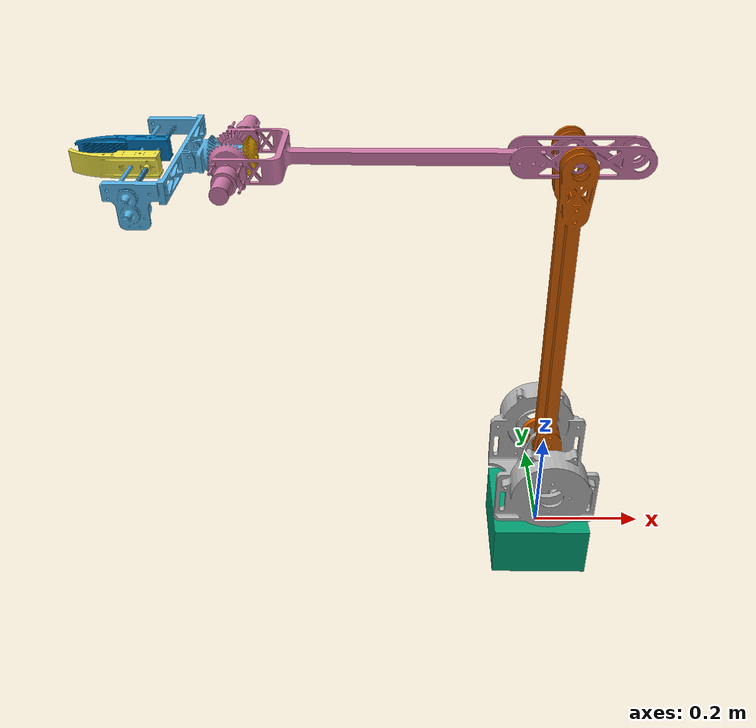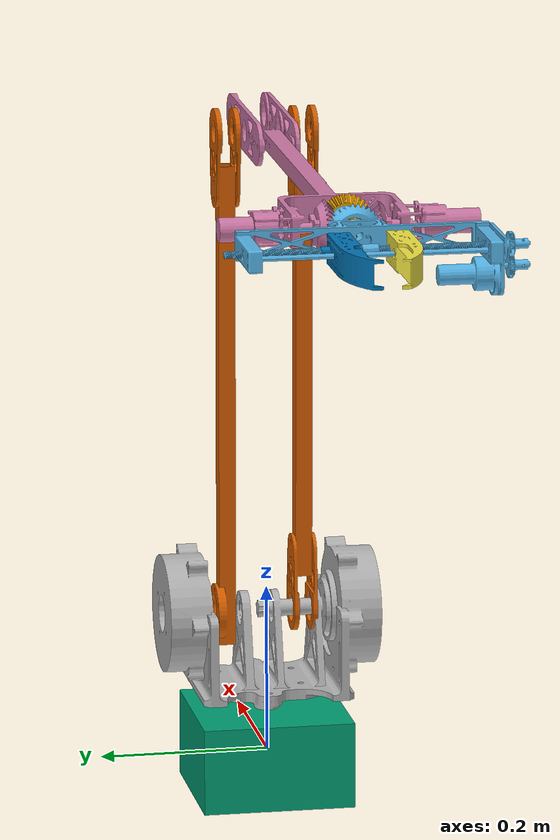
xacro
<?xml version="1.0"?>
<robot xmlns:xacro="http://www.ros.org/wiki/xacro" name="rm">
    <xacro:arg name="initial_positions_file" default="initial_positions.yaml" />

    <!-- Import rm urdf file -->
    <xacro:include filename="$(find actual_rm_description)/urdf/rm.urdf" />

    <!-- Import control_xacro -->
    <xacro:include filename="rm.ros2_control.xacro" />

    <xacro:rm_ros2_control name="FakeSystem" initial_positions_file="$(arg initial_positions_file)"/>

</robot>

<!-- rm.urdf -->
<robot name="rm" version="1.0">
  <joint name="bevel_pitch" type="revolute">
    <limit lower="-1.57000" upper="1.57000" effort="10.0" velocity="2.0"/>
    <origin rpy="0 0.00000 0" xyz="0.00000 0.00000 0.00000"/>
    <parent link="bevel_link"/>
    <child link="bevel_link_link"/>
    <axis xyz="1.00000 0.00000 0.00000"/>
  </joint>
  <joint name="bevel_roll" type="revolute">
    <limit lower="-1.57000" upper="1.57000" effort="10.0" velocity="2.0"/>
    <origin rpy="0.00000 0.00000 0.00000" xyz="-0.51941 -0.00182 -0.00020"/>
    <parent link="link2_link"/>
    <child link="bevel_link"/>
    <axis xyz="0.00000 1.00000 0.00000"/>
  </joint>
  <joint name="gripper_l" type="prismatic">
    <limit lower="0.00000" upper="0.08000" effort="10.0" velocity="2.0"/>
    <origin rpy="0.00000 0.00000 0.0" xyz="-0.11603 -0.01154 0.00026"/>
    <parent link="bevel_link_link"/>
    <child link="gripperl_link"/>
    <axis xyz="0.00000 -1.00000 0.00000"/>
  </joint>
  <joint name="gripper_r" type="prismatic">
    <limit lower="0.00000" upper="0.08000" effort="10.0" velocity="2.0"/>
    <origin rpy="0.00000 0.00000 0.0" xyz="-0.11612 0.00953 0.00026"/>
    <parent link="bevel_link_link"/>
    <child link="gripperr_link"/>
    <axis xyz="0.00000 1.00000 0.00000"/>
  </joint>
  <joint name="link1" type="revolute">
    <limit lower="-1.10000" upper="0.60000" effort="10.0" velocity="2.0"/>
    <origin rpy="0.00000 0.00000 0.00000" xyz="-0.00009 0.00000 0.11805"/>
    <parent link="swivel_link"/>
    <child link="link1_link"/>
    <axis xyz="0.00000 1.00000 0.00000"/>
  </joint>
  <joint name="link2" type="revolute">
    <limit lower="-1.10000" upper="0.80000" effort="10.0" velocity="2.0"/>
    <origin rpy="0.00000 0.00000 0.00000" xyz="-0.00188 0.00211 0.57968"/>
    <parent link="link1_link"/>
    <child link="link2_link"/>
    <axis xyz="0.00000 1.00000 0.00000"/>
  </joint>
  <joint name="swivel" type="revolute">
    <limit lower="-1.57000" upper="1.57000" effort="10.0" velocity="2.0"/>
    <origin rpy="0.00000 0.00000 0.00000" xyz="0.00009 -0.00000 0.05537"/>
    <parent link="body_link"/>
    <child link="swivel_link"/>
    <axis xyz="0.00000 0.00000 1.00000"/>
  </joint>
  <link name="bevel_link">
    <collision name="bevel_collision_roll">
      <origin rpy="0.0 -0.00000 0.0" xyz="0.00000 -0.00000 0.00000"/>
      <geometry>
        <mesh filename="package://actual_rm_description/meshes/stl/bevel_collision_roll.stl" scale="1.00000 1.00000 1.00000"/>
      </geometry>
    </collision>
    <visual name="bevel_roll">
      <origin rpy="0.0 -0.00000 0.0" xyz="0.00000 -0.00000 -0.00000"/>
      <geometry>
        <mesh filename="package://actual_rm_description/meshes/stl/bevel_roll.stl" scale="1.00000 1.00000 1.00000"/>
      </geometry>
    </visual>
  </link>
  <link name="bevel_link_link">
    <collision name="bevel_collision_pitch">
      <origin rpy="0.00000 0.00000 0.0" xyz="-0.00000 0.00000 0.00000"/>
      <geometry>
        <mesh filename="package://actual_rm_description/meshes/stl/bevel_collision_pitch.stl" scale="1.00000 1.00000 1.00000"/>
      </geometry>
    </collision>
    <visual name="bevel_pitch">
      <origin rpy="0.00000 0.00000 0.0" xyz="-0.00000 0.00000 0.00000"/>
      <geometry>
        <mesh filename="package://actual_rm_description/meshes/stl/bevel_pitch.stl" scale="1.00000 1.00000 1.00000"/>
      </geometry>
    </visual>
  </link>
  <link name="body_link">
    <collision name="body_collision">
      <origin rpy="0.00000 0.00000 0.00000" xyz="0.00000 0.00000 0.00000"/>
      <geometry>
        <mesh filename="package://actual_rm_description/meshes/stl/body_collision.stl" scale="1.00000 1.00000 1.00000"/>
      </geometry>
    </collision>
    <visual name="body">
      <origin rpy="0.00000 0.00000 0.00000" xyz="0.00000 0.00000 0.00000"/>
      <geometry>
        <mesh filename="package://actual_rm_description/meshes/stl/body.stl" scale="1.00000 1.00000 1.00000"/>
      </geometry>
    </visual>
  </link>
  <link name="gripperl_link">
    <collision name="gripperl_collision">
      <origin rpy="0.00000 0.00000 0.00000" xyz="0.00000 -0.00906 0.00000"/>
      <geometry>
        <mesh filename="package://actual_rm_description/meshes/stl/gripperl_collision.stl" scale="1.00000 1.00000 1.00000"/>
      </geometry>
    </collision>
    <visual name="gripperl">
      <origin rpy="0.00000 0.00000 0.00000" xyz="0.00000 -0.00906 0.00000"/>
      <geometry>
        <mesh filename="package://actual_rm_description/meshes/stl/gripperl.stl" scale="1.00000 1.00000 1.00000"/>
      </geometry>
    </visual>
  </link>
  <link name="gripperr_link">
    <collision name="gripperr_collision">
      <origin rpy="0.00000 0.00000 0.00000" xyz="0.00000 0.01059 -0.00000"/>
      <geometry>
        <mesh filename="package://actual_rm_description/meshes/stl/gripperr_collision.stl" scale="1.00000 1.00000 1.00000"/>
      </geometry>
    </collision>
    <visual name="gripperr">
      <origin rpy="0.00000 0.00000 0.00000" xyz="0.00000 0.01059 -0.00000"/>
      <geometry>
        <mesh filename="package://actual_rm_description/meshes/stl/gripperr.stl" scale="1.00000 1.00000 1.00000"/>
      </geometry>
    </visual>
  </link>
  <link name="link1_link">
    <collision name="link1_collision">
      <origin rpy="0.00000 0.00000 0.00000" xyz="0.00000 0.00000 0.00000"/>
      <geometry>
        <mesh filename="package://actual_rm_description/meshes/stl/link1_collision.stl" scale="1.00000 1.00000 1.00000"/>
      </geometry>
    </collision>
    <visual name="link1">
      <origin rpy="0.00000 0.00000 0.00000" xyz="0.00000 0.00000 0.00000"/>
      <geometry>
        <mesh filename="package://actual_rm_description/meshes/stl/link1.stl" scale="1.00000 1.00000 1.00000"/>
      </geometry>
    </visual>
  </link>
  <link name="link2_link">
    <collision name="link2_collision">
      <origin rpy="0.00000 0.00000 0.00000" xyz="0.00000 0.00000 0.00000"/>
      <geometry>
        <mesh filename="package://actual_rm_description/meshes/stl/link2_collision.stl" scale="1.00000 1.00000 1.00000"/>
      </geometry>
    </collision>
    <visual name="link2">
      <origin rpy="0.00000 0.00000 0.00000" xyz="0.00000 0.00000 0.00000"/>
      <geometry>
        <mesh filename="package://actual_rm_description/meshes/stl/link2.stl" scale="1.00000 1.00000 1.00000"/>
      </geometry>
    </visual>
  </link>
  <link name="swivel_link">
    <collision name="swivel_collision">
      <origin rpy="0.00000 0.00000 0.00000" xyz="0.00000 0.00000 0.00000"/>
      <geometry>
        <mesh filename="package://actual_rm_description/meshes/stl/Cube.001.stl" scale="1.00000 1.00000 1.00000"/>
      </geometry>
    </collision>
    <visual name="swivel">
      <origin rpy="0.00000 0.00000 0.00000" xyz="0.00000 0.00000 0.00000"/>
      <geometry>
        <mesh filename="package://actual_rm_description/meshes/stl/swivel.stl" scale="1.00000 1.00000 1.00000"/>
      </geometry>
    </visual>
  </link>
</robot>
